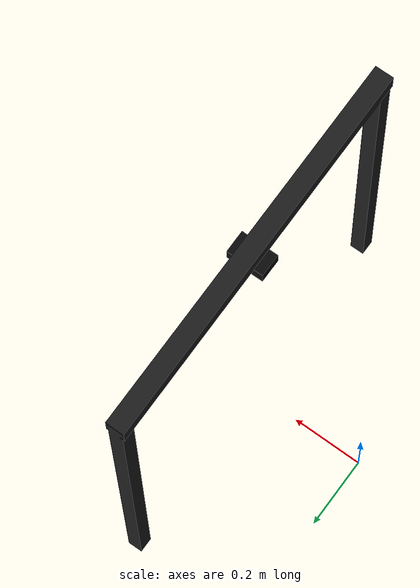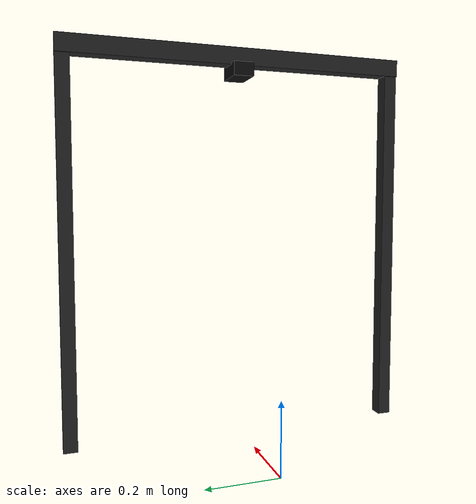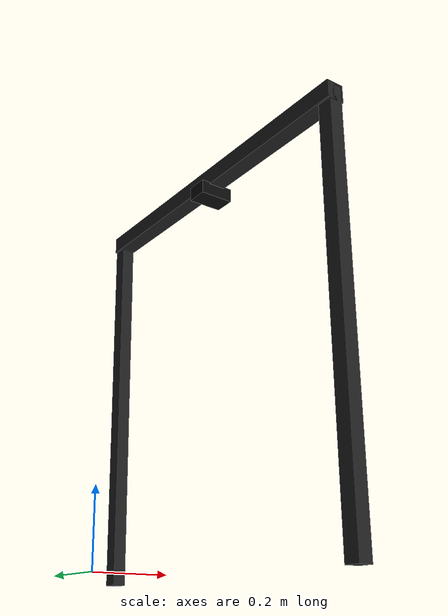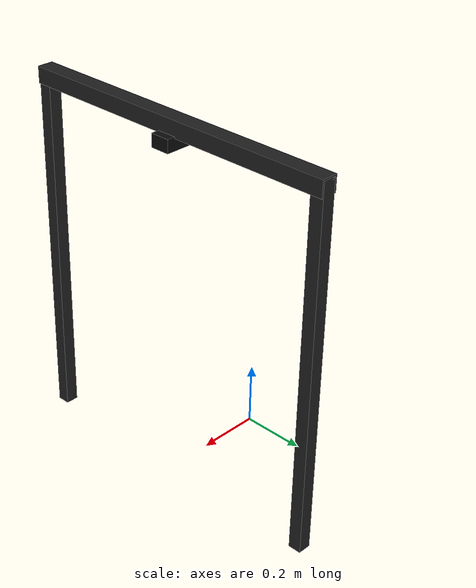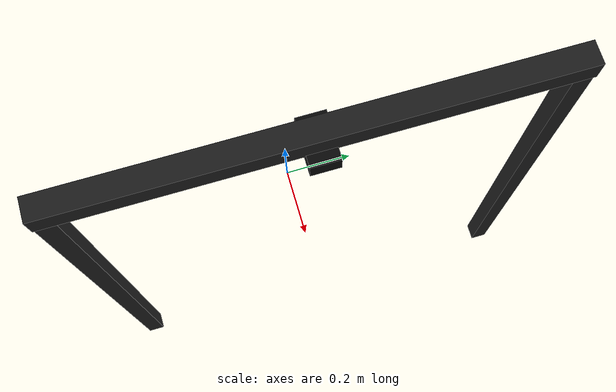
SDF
<?xml version="1.0"?>
<sdf version="1.8">
  <model name="sensoragent_rgbd_rig">
    <static>true</static>
    <link name="rig">
      <visual name="left_post">
        <pose>0.34 0.50 0.57 0 0 0</pose>
        <geometry><box><size>0.04 0.04 1.14</size></box></geometry>
        <material><diffuse>0.12 0.12 0.12 1</diffuse></material>
      </visual>
      <collision name="left_post_collision">
        <pose>0.34 0.50 0.57 0 0 0</pose>
        <geometry><box><size>0.04 0.04 1.14</size></box></geometry>
      </collision>
      <visual name="right_post">
        <pose>0.34 -0.50 0.57 0 0 0</pose>
        <geometry><box><size>0.04 0.04 1.14</size></box></geometry>
        <material><diffuse>0.12 0.12 0.12 1</diffuse></material>
      </visual>
      <collision name="right_post_collision">
        <pose>0.34 -0.50 0.57 0 0 0</pose>
        <geometry><box><size>0.04 0.04 1.14</size></box></geometry>
      </collision>
      <visual name="crossbar">
        <pose>0.34 0 1.12 0 0 0</pose>
        <geometry><box><size>0.05 1.04 0.05</size></box></geometry>
        <material><diffuse>0.12 0.12 0.12 1</diffuse></material>
      </visual>
      <collision name="crossbar_collision">
        <pose>0.34 0 1.12 0 0 0</pose>
        <geometry><box><size>0.05 1.04 0.05</size></box></geometry>
      </collision>
      <visual name="camera_body">
        <pose>0.34 0 1.08 0 0 0</pose>
        <geometry><box><size>0.10 0.06 0.04</size></box></geometry>
        <material><diffuse>0.04 0.04 0.04 1</diffuse></material>
      </visual>

      <sensor name="rgb_camera" type="camera">
        <pose>0.34 0 1.06 0 1.570796 0</pose>
        <always_on>true</always_on>
        <update_rate>10</update_rate>
        <topic>/industrial_camera/image</topic>
        <camera>
          <camera_info_topic>/industrial_camera/camera_info</camera_info_topic>
          <horizontal_fov>1.047</horizontal_fov>
          <image>
            <width>424</width>
            <height>240</height>
            <format>R8G8B8</format>
          </image>
          <clip>
            <near>0.10</near>
            <far>3.0</far>
          </clip>
        </camera>
      </sensor>

      <sensor name="depth_camera" type="depth_camera">
        <pose>0.34 0 1.06 0 1.570796 0</pose>
        <always_on>true</always_on>
        <update_rate>10</update_rate>
        <topic>/industrial_camera/depth_image</topic>
        <camera>
          <camera_info_topic>/industrial_camera/depth_camera_info</camera_info_topic>
          <horizontal_fov>1.047</horizontal_fov>
          <image>
            <width>424</width>
            <height>240</height>
          </image>
          <clip>
            <near>0.10</near>
            <far>3.0</far>
          </clip>
        </camera>
      </sensor>
    </link>
  </model>
</sdf>
